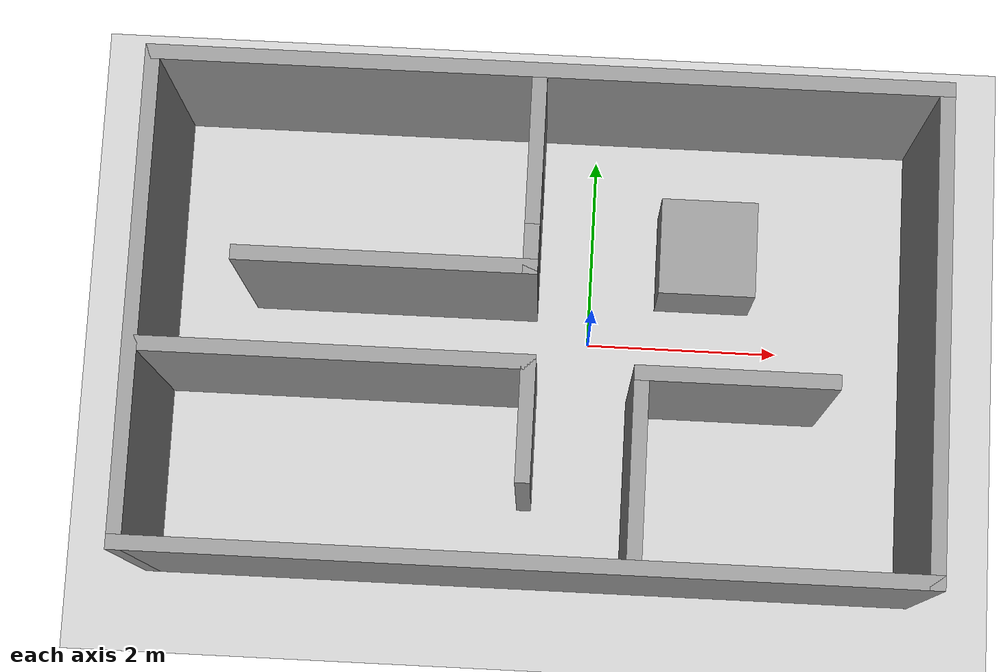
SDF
<sdf version="1.7">
 <world name="default">
  <light name="sun" type="directional">
   <pose>0 0 10 0 -0 0</pose>
   <diffuse>0.8 0.8 0.8 1</diffuse>
   <specular>0.2 0.2 0.2 1</specular>
   <attenuation>
    <range>1000</range>
    <constant>0.9</constant>
    <linear>0.01</linear>
    <quadratic>0.001</quadratic>
   </attenuation>
   <direction>-0.5 0.1 -0.9</direction>
   <spot><inner_angle>0</inner_angle><outer_angle>0</outer_angle><falloff>0</falloff></spot>
  </light>
  <model name="ground_plane">
   <static>1</static>
   <link name="link">
    <collision name="collision">
     <geometry><plane><normal>0 0 1</normal><size>100 100</size></plane></geometry>
     <surface><friction><ode><mu>100</mu><mu2>50</mu2></ode></friction></surface>
    </collision>
    <visual name="visual">
     <cast_shadows>0</cast_shadows>
     <geometry><plane><normal>0 0 1</normal><size>100 100</size></plane></geometry>
     <material>
      <script><uri>file://media/materials/scripts/gazebo.material</uri><name>Gazebo/Grey</name></script>
     </material>
    </visual>
   </link>
  </model>
  <gravity>0 0 -9.8</gravity>
  <magnetic_field>6e-06 2.3e-05 -4.2e-05</magnetic_field>
  <atmosphere type="adiabatic"/>
  <physics type="ode">
   <max_step_size>0.001</max_step_size>
   <real_time_factor>1</real_time_factor>
   <real_time_update_rate>1000</real_time_update_rate>
  </physics>
  <scene><ambient>0.4 0.4 0.4 1</ambient><background>0.7 0.7 0.7 1</background><shadows>1</shadows></scene>
  <audio><device>default</device></audio>
  <spherical_coordinates>
   <surface_model>EARTH_WGS84</surface_model>
   <latitude_deg>0</latitude_deg>
   <longitude_deg>0</longitude_deg>
   <elevation>0</elevation>
   <heading_deg>0</heading_deg>
  </spherical_coordinates>
  <model name="room">
   <pose>-0.532662 0.931498 0 0 -0 0</pose>
   <link name="Wall_0">
    <collision name="Wall_0_Collision">
     <geometry><box><size>8 0.15 2.5</size></box></geometry>
     <pose>0 0 1.25 0 -0 0</pose>
    </collision>
    <visual name="Wall_0_Visual">
     <pose>0 0 1.25 0 -0 0</pose>
     <geometry><box><size>8 0.15 2.5</size></box></geometry>
     <material>
      <script><uri>file://media/materials/scripts/gazebo.material</uri><name>Gazebo/Grey</name></script>
      <ambient>1 1 1 1</ambient>
     </material>
     <meta><layer>0</layer></meta>
    </visual>
    <pose>0 1.3625 0 0 -0 0</pose>
   </link>
   <link name="Wall_1">
    <collision name="Wall_1_Collision">
     <geometry><box><size>5 0.15 2.5</size></box></geometry>
     <pose>0 0 1.25 0 -0 0</pose>
    </collision>
    <visual name="Wall_1_Visual">
     <pose>0 0 1.25 0 -0 0</pose>
     <geometry><box><size>5 0.15 2.5</size></box></geometry>
     <material>
      <script><uri>file://media/materials/scripts/gazebo.material</uri><name>Gazebo/Grey</name></script>
      <ambient>1 1 1 1</ambient>
     </material>
     <meta><layer>0</layer></meta>
    </visual>
    <pose>3.925 -1.0625 0 0 -0 -1.5708</pose>
   </link>
   <link name="Wall_12">
    <collision name="Wall_12_Collision">
     <geometry><box><size>4 0.15 2.5</size></box></geometry>
     <pose>0 0 1.25 0 -0 0</pose>
    </collision>
    <visual name="Wall_12_Visual">
     <pose>0 0 1.25 0 -0 0</pose>
     <geometry><box><size>4 0.15 2.5</size></box></geometry>
     <material>
      <script><uri>file://media/materials/scripts/gazebo.material</uri><name>Gazebo/Grey</name></script>
      <ambient>1 1 1 1</ambient>
     </material>
     <meta><layer>0</layer></meta>
    </visual>
    <pose>-1.99 -1.5575 0 0 -0 0</pose>
   </link>
   <link name="Wall_13">
    <collision name="Wall_13_Collision">
     <geometry><box><size>1.25 0.15 2.5</size></box></geometry>
     <pose>0 0 1.25 0 -0 0</pose>
    </collision>
    <visual name="Wall_13_Visual">
     <pose>0 0 1.25 0 -0 0</pose>
     <geometry><box><size>1.25 0.15 2.5</size></box></geometry>
     <material>
      <script><uri>file://media/materials/scripts/gazebo.material</uri><name>Gazebo/Grey</name></script>
      <ambient>1 1 1 1</ambient>
     </material>
     <meta><layer>0</layer></meta>
    </visual>
    <pose>-0.065 -2.1075 0 0 -0 -1.5708</pose>
   </link>
   <link name="Wall_15">
    <collision name="Wall_15_Collision">
     <geometry><box><size>2 0.15 2.5</size></box></geometry>
     <pose>0 0 1.25 0 -0 0</pose>
    </collision>
    <visual name="Wall_15_Visual">
     <pose>0 0 1.25 0 -0 0</pose>
     <geometry><box><size>2 0.15 2.5</size></box></geometry>
     <material>
      <script><uri>file://media/materials/scripts/gazebo.material</uri><name>Gazebo/Grey</name></script>
      <ambient>1 1 1 1</ambient>
     </material>
     <meta><layer>0</layer></meta>
    </visual>
    <pose>1.035 -2.5325 0 0 -0 1.5708</pose>
   </link>
   <link name="Wall_16">
    <collision name="Wall_16_Collision">
     <geometry><box><size>2 0.15 2.5</size></box></geometry>
     <pose>0 0 1.25 0 -0 0</pose>
    </collision>
    <visual name="Wall_16_Visual">
     <pose>0 0 1.25 0 -0 0</pose>
     <geometry><box><size>2 0.15 2.5</size></box></geometry>
     <material>
      <script><uri>file://media/materials/scripts/gazebo.material</uri><name>Gazebo/Grey</name></script>
      <ambient>1 1 1 1</ambient>
     </material>
     <meta><layer>0</layer></meta>
    </visual>
    <pose>1.96 -1.6075 0 0 -0 0</pose>
   </link>
   <link name="Wall_2">
    <collision name="Wall_2_Collision">
     <geometry><box><size>8 0.15 2.5</size></box></geometry>
     <pose>0 0 1.25 0 -0 0</pose>
    </collision>
    <visual name="Wall_2_Visual">
     <pose>0 0 1.25 0 -0 0</pose>
     <geometry><box><size>8 0.15 2.5</size></box></geometry>
     <material>
      <script><uri>file://media/materials/scripts/gazebo.material</uri><name>Gazebo/Grey</name></script>
      <ambient>1 1 1 1</ambient>
     </material>
     <meta><layer>0</layer></meta>
    </visual>
    <pose>0 -3.4875 0 0 -0 3.14159</pose>
   </link>
   <link name="Wall_3">
    <collision name="Wall_3_Collision">
     <geometry><box><size>5 0.15 2.5</size></box></geometry>
     <pose>0 0 1.25 0 -0 0</pose>
    </collision>
    <visual name="Wall_3_Visual">
     <pose>0 0 1.25 0 -0 0</pose>
     <geometry><box><size>5 0.15 2.5</size></box></geometry>
     <material>
      <script><uri>file://media/materials/scripts/gazebo.material</uri><name>Gazebo/Grey</name></script>
      <ambient>1 1 1 1</ambient>
     </material>
     <meta><layer>0</layer></meta>
    </visual>
    <pose>-3.925 -1.0625 0 0 -0 1.5708</pose>
   </link>
   <link name="Wall_5">
    <collision name="Wall_5_Collision">
     <geometry><box><size>1.5 0.15 2.5</size></box></geometry>
     <pose>0 0 1.25 0 -0 0</pose>
    </collision>
    <visual name="Wall_5_Visual">
     <pose>0 0 1.25 0 -0 0</pose>
     <geometry><box><size>1.5 0.15 2.5</size></box></geometry>
     <material>
      <script><uri>file://media/materials/scripts/gazebo.material</uri><name>Gazebo/Grey</name></script>
      <ambient>1 1 1 1</ambient>
     </material>
     <meta><layer>0</layer></meta>
    </visual>
    <pose>-0.095 0.5575 0 0 -0 1.5708</pose>
   </link>
   <link name="Wall_6">
    <collision name="Wall_6_Collision">
     <geometry><box><size>2 0.15 2.5</size></box></geometry>
     <pose>0 0 1.25 0 -0 0</pose>
    </collision>
    <visual name="Wall_6_Visual">
     <pose>0 0 1.25 0 -0 0</pose>
     <geometry><box><size>2 0.15 2.5</size></box></geometry>
     <material>
      <script><uri>file://media/materials/scripts/gazebo.material</uri><name>Gazebo/Grey</name></script>
      <ambient>1 1 1 1</ambient>
     </material>
     <meta><layer>0</layer></meta>
    </visual>
    <pose>-0.095 0.3075 0 0 -0 -1.5708</pose>
   </link>
   <link name="Wall_7">
    <collision name="Wall_7_Collision">
     <geometry><box><size>3 0.15 2.5</size></box></geometry>
     <pose>0 0 1.25 0 -0 0</pose>
    </collision>
    <visual name="Wall_7_Visual">
     <pose>0 0 1.25 0 -0 0</pose>
     <geometry><box><size>3 0.15 2.5</size></box></geometry>
     <material>
      <script><uri>file://media/materials/scripts/gazebo.material</uri><name>Gazebo/Grey</name></script>
      <ambient>1 1 1 1</ambient>
     </material>
     <meta><layer>0</layer></meta>
    </visual>
    <pose>-1.52 -0.6175 0 0 -0 3.14159</pose>
   </link>
   <static>1</static>
  </model>
  <model name="unit_box">
   <pose>1.18893 0.917413 0.5 0 -0 0</pose>
   <link name="link">
    <inertial>
     <mass>1</mass>
     <inertia>
      <ixx>0.166667</ixx>
      <ixy>0</ixy>
      <ixz>0</ixz>
      <iyy>0.166667</iyy>
      <iyz>0</iyz>
      <izz>0.166667</izz>
     </inertia>
    </inertial>
    <collision name="collision"><geometry><box><size>1 1 1</size></box></geometry></collision>
    <visual name="visual">
     <geometry><box><size>1 1 1</size></box></geometry>
     <material>
      <script><name>Gazebo/Grey</name><uri>file://media/materials/scripts/gazebo.material</uri></script>
     </material>
    </visual>
   </link>
  </model>
 </world>
</sdf>
